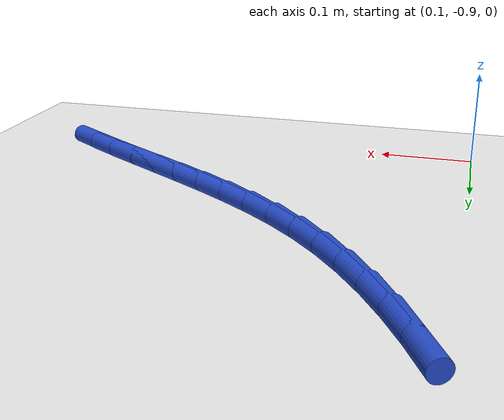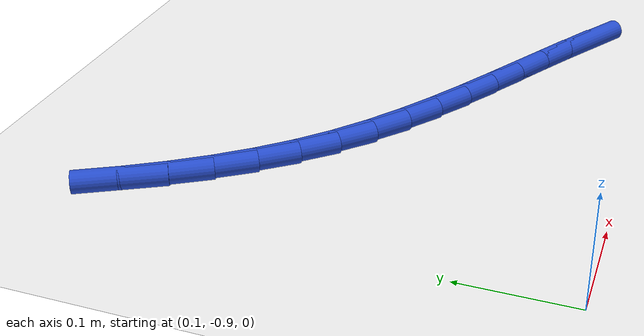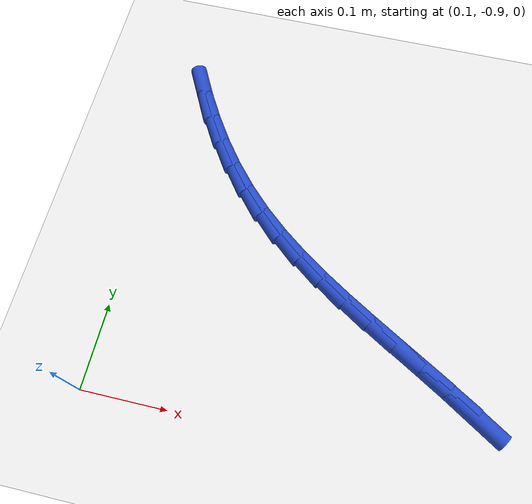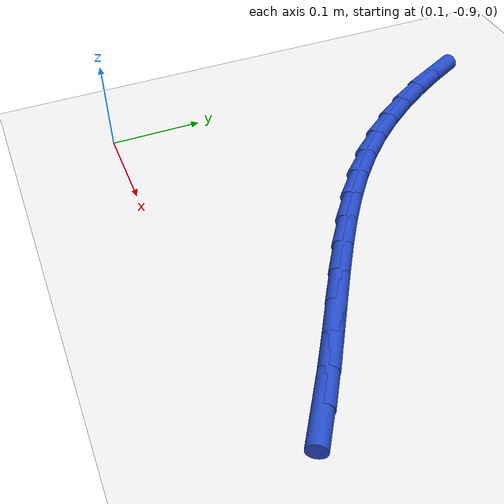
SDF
<sdf version="1.6">
 <world name="default">
  <model name="ground_plane">
   <static>1</static>
   <link name="link">
    <collision name="collision">
     <geometry><plane><normal>0 0 1</normal><size>100 100</size></plane></geometry>
     <surface><friction><ode><mu>100</mu><mu2>50</mu2></ode></friction></surface>
    </collision>
    <visual name="visual">
     <cast_shadows>0</cast_shadows>
     <geometry><plane><normal>0 0 1</normal><size>100 100</size></plane></geometry>
     <material>
      <script><uri>file://media/materials/scripts/gazebo.material</uri><name>Gazebo/WhiteGlow</name></script>
     </material>
    </visual>
   </link>
  </model>
  <model name="line">
   <link name="link_152">
    <pose>0.5240006572272052 -0.8329467858143011 0.01 0 1.57 -0.5506905857778847</pose>
    <collision name="collision">
     <geometry><cylinder><radius>0.01</radius><length>0.08</length></cylinder></geometry>
    </collision>
    <visual name="visual">
     <material>
      <script><name>Gazebo/Blue</name><uri>file://media/materials/scripts/gazebo.material</uri></script>
     </material>
     <geometry><cylinder><radius>0.01</radius><length>0.08</length></cylinder></geometry>
    </visual>
   </link>
   <link name="link_153">
    <pose>0.49145666314774694 -0.8129629577710041 0.01 0 1.57 -0.5295814278676716</pose>
    <collision name="collision">
     <geometry><cylinder><radius>0.01</radius><length>0.08</length></cylinder></geometry>
    </collision>
    <visual name="visual">
     <material>
      <script><name>Gazebo/Blue</name><uri>file://media/materials/scripts/gazebo.material</uri></script>
     </material>
     <geometry><cylinder><radius>0.01</radius><length>0.08</length></cylinder></geometry>
    </visual>
   </link>
   <link name="link_154">
    <pose>0.45873525102270407 -0.7938093194047331 0.01 0 1.57 -0.5195942166053604</pose>
    <collision name="collision">
     <geometry><cylinder><radius>0.01</radius><length>0.08</length></cylinder></geometry>
    </collision>
    <visual name="visual">
     <material>
      <script><name>Gazebo/Blue</name><uri>file://media/materials/scripts/gazebo.material</uri></script>
     </material>
     <geometry><cylinder><radius>0.01</radius><length>0.08</length></cylinder></geometry>
    </visual>
   </link>
   <link name="link_155">
    <pose>0.42606932328643093 -0.7751236526798129 0.01 0 1.57 -0.5209710182926578</pose>
    <collision name="collision">
     <geometry><cylinder><radius>0.01</radius><length>0.08</length></cylinder></geometry>
    </collision>
    <visual name="visual">
     <material>
      <script><name>Gazebo/Blue</name><uri>file://media/materials/scripts/gazebo.material</uri></script>
     </material>
     <geometry><cylinder><radius>0.01</radius><length>0.08</length></cylinder></geometry>
    </visual>
   </link>
   <link name="link_156">
    <pose>0.39369178237327956 -0.7565437395605663 0.01 0 1.57 -0.5339926704181197</pose>
    <collision name="collision">
     <geometry><cylinder><radius>0.01</radius><length>0.08</length></cylinder></geometry>
    </collision>
    <visual name="visual">
     <material>
      <script><name>Gazebo/Blue</name><uri>file://media/materials/scripts/gazebo.material</uri></script>
     </material>
     <geometry><cylinder><radius>0.01</radius><length>0.08</length></cylinder></geometry>
    </visual>
   </link>
   <link name="link_157">
    <pose>0.36183553071760277 -0.7377073620113173 0.01 0 1.57 -0.5589754591922274</pose>
    <collision name="collision">
     <geometry><cylinder><radius>0.01</radius><length>0.08</length></cylinder></geometry>
    </collision>
    <visual name="visual">
     <material>
      <script><name>Gazebo/Blue</name><uri>file://media/materials/scripts/gazebo.material</uri></script>
     </material>
     <geometry><cylinder><radius>0.01</radius><length>0.08</length></cylinder></geometry>
    </visual>
   </link>
   <link name="link_158">
    <pose>0.3307334707537534 -0.718252301996389 0.01 0 1.57 -0.5962174470207873</pose>
    <collision name="collision">
     <geometry><cylinder><radius>0.01</radius><length>0.08</length></cylinder></geometry>
    </collision>
    <visual name="visual">
     <material>
      <script><name>Gazebo/Blue</name><uri>file://media/materials/scripts/gazebo.material</uri></script>
     </material>
     <geometry><cylinder><radius>0.01</radius><length>0.08</length></cylinder></geometry>
    </visual>
   </link>
   <link name="link_159">
    <pose>0.30061850491608355 -0.6978163414801046 0.01 0 1.57 -0.645885667965132</pose>
    <collision name="collision">
     <geometry><cylinder><radius>0.01</radius><length>0.08</length></cylinder></geometry>
    </collision>
    <visual name="visual">
     <material>
      <script><name>Gazebo/Blue</name><uri>file://media/materials/scripts/gazebo.material</uri></script>
     </material>
     <geometry><cylinder><radius>0.01</radius><length>0.08</length></cylinder></geometry>
    </visual>
   </link>
   <link name="link_160">
    <pose>0.27172353563894724 -0.676037262426789 0.01 0 1.57 -0.7078409523575212</pose>
    <collision name="collision">
     <geometry><cylinder><radius>0.01</radius><length>0.08</length></cylinder></geometry>
    </collision>
    <visual name="visual">
     <material>
      <script><name>Gazebo/Blue</name><uri>file://media/materials/scripts/gazebo.material</uri></script>
     </material>
     <geometry><cylinder><radius>0.01</radius><length>0.08</length></cylinder></geometry>
    </visual>
   </link>
   <link name="link_161">
    <pose>0.24428146535669676 -0.652552846800765 0.01 0 1.57 -0.7807691721970669</pose>
    <collision name="collision">
     <geometry><cylinder><radius>0.01</radius><length>0.08</length></cylinder></geometry>
    </collision>
    <visual name="visual">
     <material>
      <script><name>Gazebo/Blue</name><uri>file://media/materials/scripts/gazebo.material</uri></script>
     </material>
     <geometry><cylinder><radius>0.01</radius><length>0.08</length></cylinder></geometry>
    </visual>
   </link>
   <link name="link_162">
    <pose>0.21851397739103087 -0.6270228162927621 0.01 0 1.57 -0.8542934320848069</pose>
    <collision name="collision">
     <geometry><cylinder><radius>0.01</radius><length>0.08</length></cylinder></geometry>
    </collision>
    <visual name="visual">
     <material>
      <script><name>Gazebo/Blue</name><uri>file://media/materials/scripts/gazebo.material</uri></script>
     </material>
     <geometry><cylinder><radius>0.01</radius><length>0.08</length></cylinder></geometry>
    </visual>
   </link>
   <link name="link_163">
    <pose>0.1944797042721146 -0.5994257493397568 0.01 0 1.57 -0.9211956196694214</pose>
    <collision name="collision">
     <geometry><cylinder><radius>0.01</radius><length>0.08</length></cylinder></geometry>
    </collision>
    <visual name="visual">
     <material>
      <script><name>Gazebo/Blue</name><uri>file://media/materials/scripts/gazebo.material</uri></script>
     </material>
     <geometry><cylinder><radius>0.01</radius><length>0.08</length></cylinder></geometry>
    </visual>
   </link>
   <link name="link_164">
    <pose>0.17211418228292824 -0.5699809473367867 0.01 0 1.57 -0.9816197396071198</pose>
    <collision name="collision">
     <geometry><cylinder><radius>0.01</radius><length>0.08</length></cylinder></geometry>
    </collision>
    <visual name="visual">
     <material>
      <script><name>Gazebo/Blue</name><uri>file://media/materials/scripts/gazebo.material</uri></script>
     </material>
     <geometry><cylinder><radius>0.01</radius><length>0.08</length></cylinder></geometry>
    </visual>
   </link>
   <link name="link_165">
    <pose>0.15134991795531347 -0.5389136365602146 0.01 0 1.57 -1.036018573628173</pose>
    <collision name="collision">
     <geometry><cylinder><radius>0.01</radius><length>0.08</length></cylinder></geometry>
    </collision>
    <visual name="visual">
     <material>
      <script><name>Gazebo/Blue</name><uri>file://media/materials/scripts/gazebo.material</uri></script>
     </material>
     <geometry><cylinder><radius>0.01</radius><length>0.08</length></cylinder></geometry>
    </visual>
   </link>
   <link name="link_166">
    <pose>0.13211941782111342 -0.5064490432864043 0.01 0 1.57 -1.0849056287193173</pose>
    <collision name="collision">
     <geometry><cylinder><radius>0.01</radius><length>0.08</length></cylinder></geometry>
    </collision>
    <visual name="visual">
     <material>
      <script><name>Gazebo/Blue</name><uri>file://media/materials/scripts/gazebo.material</uri></script>
     </material>
     <geometry><cylinder><radius>0.01</radius><length>0.08</length></cylinder></geometry>
    </visual>
   </link>
  </model>
 </world>
</sdf>
